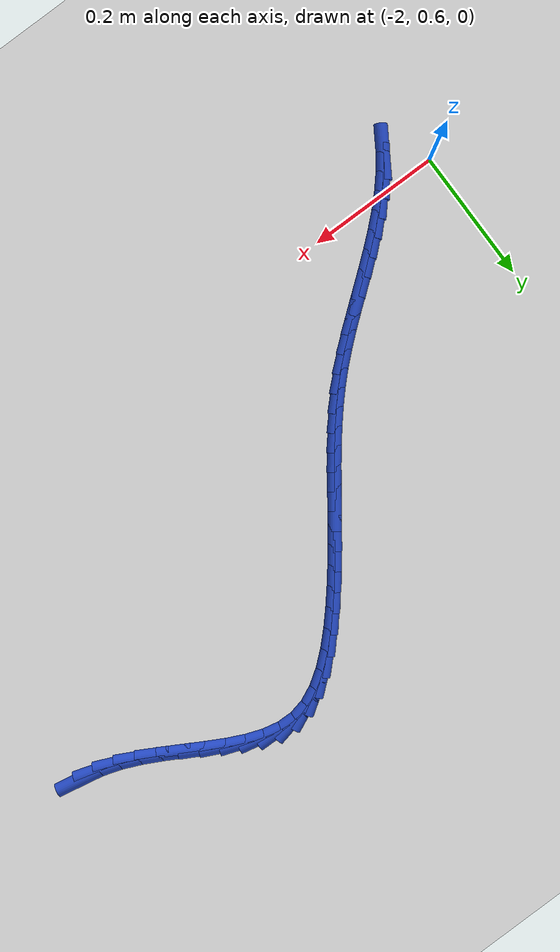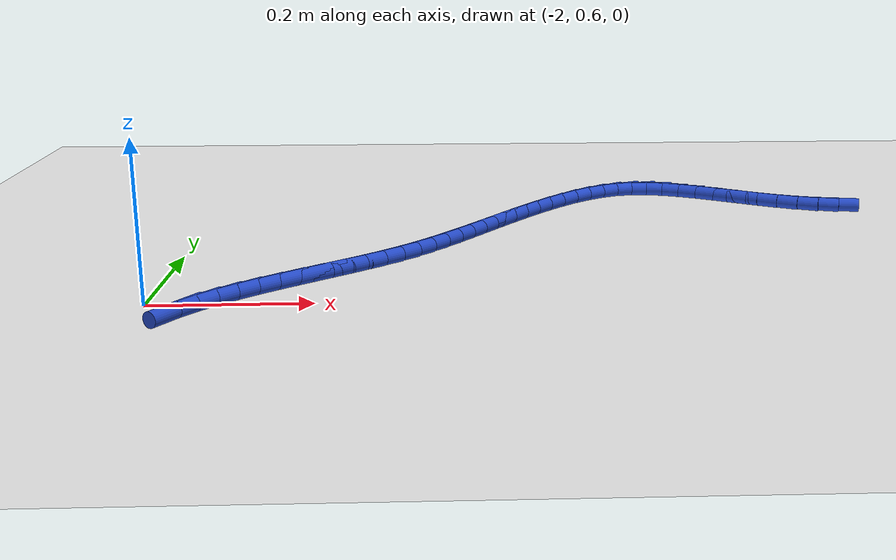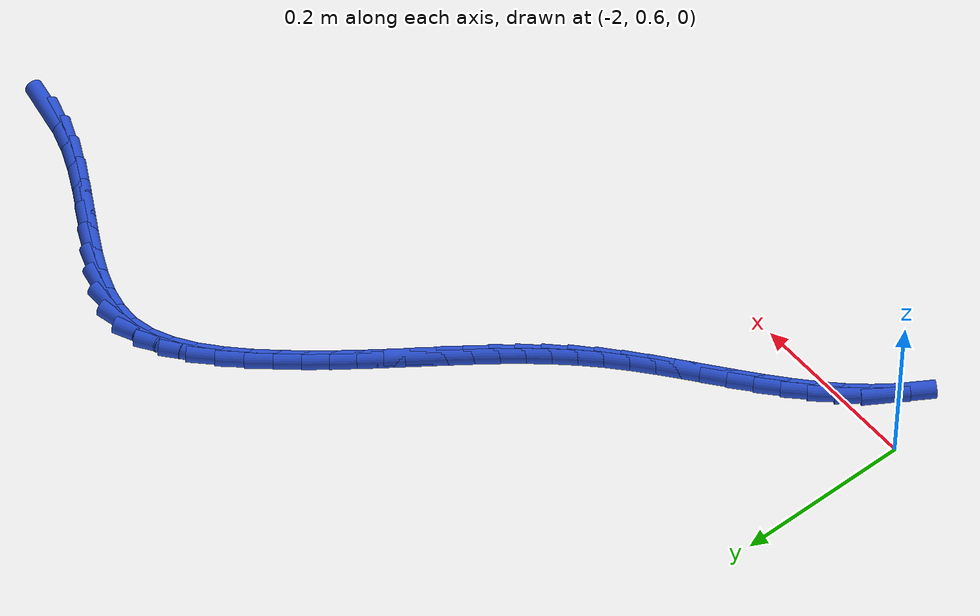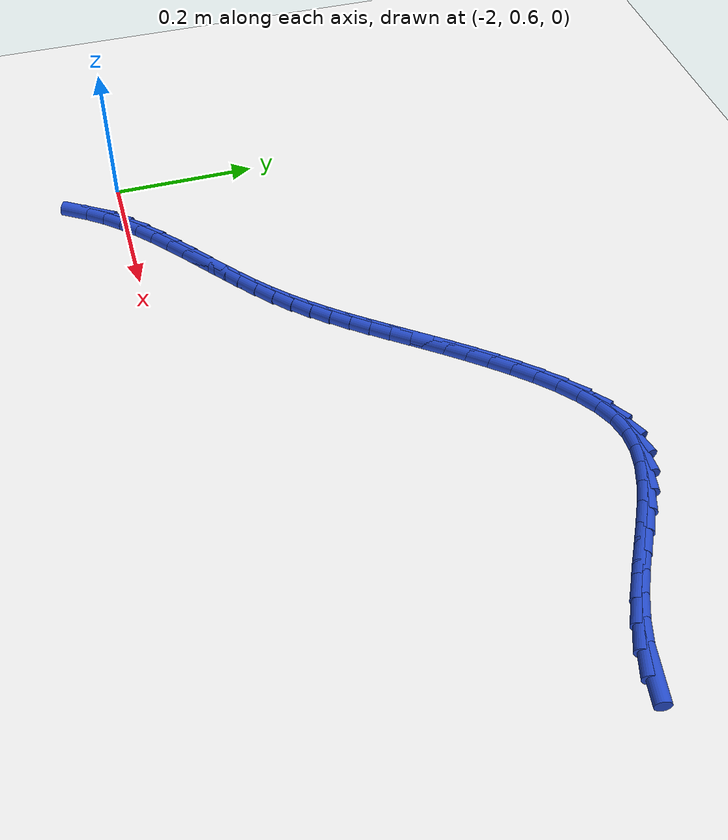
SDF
<sdf version="1.6">
 <world name="default">
  <model name="ground_plane">
   <static>1</static>
   <link name="link">
    <collision name="collision">
     <geometry><plane><normal>0 0 1</normal><size>100 100</size></plane></geometry>
     <surface><friction><ode><mu>100</mu><mu2>50</mu2></ode></friction></surface>
    </collision>
    <visual name="visual">
     <cast_shadows>0</cast_shadows>
     <geometry><plane><normal>0 0 1</normal><size>100 100</size></plane></geometry>
     <material>
      <script><uri>file://media/materials/scripts/gazebo.material</uri><name>Gazebo/WhiteGlow</name></script>
     </material>
    </visual>
   </link>
  </model>
  <model name="line">
   <link name="link_57">
    <pose>-1.0777217798483143 1.0114963046796694 0.01 0 1.57 -0.18963756729086753</pose>
    <collision name="collision">
     <geometry><cylinder><radius>0.01</radius><length>0.08</length></cylinder></geometry>
    </collision>
    <visual name="visual">
     <material>
      <script><name>Gazebo/Blue</name><uri>file://media/materials/scripts/gazebo.material</uri></script>
     </material>
     <geometry><cylinder><radius>0.01</radius><length>0.08</length></cylinder></geometry>
    </visual>
   </link>
   <link name="link_58">
    <pose>-1.1061376690431433 1.0169505648471462 0.01 0 1.57 -0.31014908968528165</pose>
    <collision name="collision">
     <geometry><cylinder><radius>0.01</radius><length>0.08</length></cylinder></geometry>
    </collision>
    <visual name="visual">
     <material>
      <script><name>Gazebo/Blue</name><uri>file://media/materials/scripts/gazebo.material</uri></script>
     </material>
     <geometry><cylinder><radius>0.01</radius><length>0.08</length></cylinder></geometry>
    </visual>
   </link>
   <link name="link_59">
    <pose>-1.1342468490902466 1.025959329386577 0.01 0 1.57 -0.408121723956436</pose>
    <collision name="collision">
     <geometry><cylinder><radius>0.01</radius><length>0.08</length></cylinder></geometry>
    </collision>
    <visual name="visual">
     <material>
      <script><name>Gazebo/Blue</name><uri>file://media/materials/scripts/gazebo.material</uri></script>
     </material>
     <geometry><cylinder><radius>0.01</radius><length>0.08</length></cylinder></geometry>
    </visual>
   </link>
   <link name="link_60">
    <pose>-1.1620193161146386 1.03796814226873 0.01 0 1.57 -0.4725298005467078</pose>
    <collision name="collision">
     <geometry><cylinder><radius>0.01</radius><length>0.08</length></cylinder></geometry>
    </collision>
    <visual name="visual">
     <material>
      <script><name>Gazebo/Blue</name><uri>file://media/materials/scripts/gazebo.material</uri></script>
     </material>
     <geometry><cylinder><radius>0.01</radius><length>0.08</length></cylinder></geometry>
    </visual>
   </link>
   <link name="link_61">
    <pose>-1.1894486435583793 1.0519887132742813 0.01 0 1.57 -0.5070642484486582</pose>
    <collision name="collision">
     <geometry><cylinder><radius>0.01</radius><length>0.08</length></cylinder></geometry>
    </collision>
    <visual name="visual">
     <material>
      <script><name>Gazebo/Blue</name><uri>file://media/materials/scripts/gazebo.material</uri></script>
     </material>
     <geometry><cylinder><radius>0.01</radius><length>0.08</length></cylinder></geometry>
    </visual>
   </link>
   <link name="link_62">
    <pose>-1.2165284545049395 1.067031838757636 0.01 0 1.57 -0.5136470484361008</pose>
    <collision name="collision">
     <geometry><cylinder><radius>0.01</radius><length>0.08</length></cylinder></geometry>
    </collision>
    <visual name="visual">
     <material>
      <script><name>Gazebo/Blue</name><uri>file://media/materials/scripts/gazebo.material</uri></script>
     </material>
     <geometry><cylinder><radius>0.01</radius><length>0.08</length></cylinder></geometry>
    </visual>
   </link>
   <link name="link_63">
    <pose>-1.243252372037789 1.0821083150731985 0.01 0 1.57 -0.49175943579107173</pose>
    <collision name="collision">
     <geometry><cylinder><radius>0.01</radius><length>0.08</length></cylinder></geometry>
    </collision>
    <visual name="visual">
     <material>
      <script><name>Gazebo/Blue</name><uri>file://media/materials/scripts/gazebo.material</uri></script>
     </material>
     <geometry><cylinder><radius>0.01</radius><length>0.08</length></cylinder></geometry>
    </visual>
   </link>
   <link name="link_64">
    <pose>-1.2696140192403986 1.096228938575373 0.01 0 1.57 -0.43806363856981906</pose>
    <collision name="collision">
     <geometry><cylinder><radius>0.01</radius><length>0.08</length></cylinder></geometry>
    </collision>
    <visual name="visual">
     <material>
      <script><name>Gazebo/Blue</name><uri>file://media/materials/scripts/gazebo.material</uri></script>
     </material>
     <geometry><cylinder><radius>0.01</radius><length>0.08</length></cylinder></geometry>
    </visual>
   </link>
   <link name="link_65">
    <pose>-1.2956070191962377 1.108404505618564 0.01 0 1.57 -0.34620632339271007</pose>
    <collision name="collision">
     <geometry><cylinder><radius>0.01</radius><length>0.08</length></cylinder></geometry>
    </collision>
    <visual name="visual">
     <material>
      <script><name>Gazebo/Blue</name><uri>file://media/materials/scripts/gazebo.material</uri></script>
     </material>
     <geometry><cylinder><radius>0.01</radius><length>0.08</length></cylinder></geometry>
    </visual>
   </link>
   <link name="link_66">
    <pose>-1.3212249949887778 1.1176458125571762 0.01 0 1.57 -0.20768138611917372</pose>
    <collision name="collision">
     <geometry><cylinder><radius>0.01</radius><length>0.08</length></cylinder></geometry>
    </collision>
    <visual name="visual">
     <material>
      <script><name>Gazebo/Blue</name><uri>file://media/materials/scripts/gazebo.material</uri></script>
     </material>
     <geometry><cylinder><radius>0.01</radius><length>0.08</length></cylinder></geometry>
    </visual>
   </link>
   <link name="link_67">
    <pose>-1.3464615697014881 1.1229636557456144 0.01 0 1.57 -0.016304205568538666</pose>
    <collision name="collision">
     <geometry><cylinder><radius>0.01</radius><length>0.08</length></cylinder></geometry>
    </collision>
    <visual name="visual">
     <material>
      <script><name>Gazebo/Blue</name><uri>file://media/materials/scripts/gazebo.material</uri></script>
     </material>
     <geometry><cylinder><radius>0.01</radius><length>0.08</length></cylinder></geometry>
    </visual>
   </link>
   <link name="link_68">
    <pose>-1.3713103664178399 1.1233688315382828 0.01 0 1.57 0.21829590260100543</pose>
    <collision name="collision">
     <geometry><cylinder><radius>0.01</radius><length>0.08</length></cylinder></geometry>
    </collision>
    <visual name="visual">
     <material>
      <script><name>Gazebo/Blue</name><uri>file://media/materials/scripts/gazebo.material</uri></script>
     </material>
     <geometry><cylinder><radius>0.01</radius><length>0.08</length></cylinder></geometry>
    </visual>
   </link>
   <link name="link_69">
    <pose>-1.3957604164779591 1.1179450576303693 0.01 0 1.57 0.43227511256635154</pose>
    <collision name="collision">
     <geometry><cylinder><radius>0.01</radius><length>0.08</length></cylinder></geometry>
    </collision>
    <visual name="visual">
     <material>
      <script><name>Gazebo/Blue</name><uri>file://media/materials/scripts/gazebo.material</uri></script>
     </material>
     <geometry><cylinder><radius>0.01</radius><length>0.08</length></cylinder></geometry>
    </visual>
   </link>
   <link name="link_70">
    <pose>-1.4197308832820836 1.1068856224124266 0.01 0 1.57 0.5900061105820735</pose>
    <collision name="collision">
     <geometry><cylinder><radius>0.01</radius><length>0.08</length></cylinder></geometry>
    </collision>
    <visual name="visual">
     <material>
      <script><name>Gazebo/Blue</name><uri>file://media/materials/scripts/gazebo.material</uri></script>
     </material>
     <geometry><cylinder><radius>0.01</radius><length>0.08</length></cylinder></geometry>
    </visual>
   </link>
   <link name="link_71">
    <pose>-1.4430865452606743 1.0912475003780706 0.01 0 1.57 0.7025256998970416</pose>
    <collision name="collision">
     <geometry><cylinder><radius>0.01</radius><length>0.08</length></cylinder></geometry>
    </collision>
    <visual name="visual">
     <material>
      <script><name>Gazebo/Blue</name><uri>file://media/materials/scripts/gazebo.material</uri></script>
     </material>
     <geometry><cylinder><radius>0.01</radius><length>0.08</length></cylinder></geometry>
    </visual>
   </link>
   <link name="link_72">
    <pose>-1.465690746744254 1.0721104409197761 0.01 0 1.57 0.7817044151747691</pose>
    <collision name="collision">
     <geometry><cylinder><radius>0.01</radius><length>0.08</length></cylinder></geometry>
    </collision>
    <visual name="visual">
     <material>
      <script><name>Gazebo/Blue</name><uri>file://media/materials/scripts/gazebo.material</uri></script>
     </material>
     <geometry><cylinder><radius>0.01</radius><length>0.08</length></cylinder></geometry>
    </visual>
   </link>
   <link name="link_73">
    <pose>-1.4874068320633462 1.0505541934300189 0.01 0 1.57 0.8359291964906289</pose>
    <collision name="collision">
     <geometry><cylinder><radius>0.01</radius><length>0.08</length></cylinder></geometry>
    </collision>
    <visual name="visual">
     <material>
      <script><name>Gazebo/Blue</name><uri>file://media/materials/scripts/gazebo.material</uri></script>
     </material>
     <geometry><cylinder><radius>0.01</radius><length>0.08</length></cylinder></geometry>
    </visual>
   </link>
   <link name="link_74">
    <pose>-1.5080981455484754 1.027658507301274 0.01 0 1.57 0.8713934667841656</pose>
    <collision name="collision">
     <geometry><cylinder><radius>0.01</radius><length>0.08</length></cylinder></geometry>
    </collision>
    <visual name="visual">
     <material>
      <script><name>Gazebo/Blue</name><uri>file://media/materials/scripts/gazebo.material</uri></script>
     </material>
     <geometry><cylinder><radius>0.01</radius><length>0.08</length></cylinder></geometry>
    </visual>
   </link>
   <link name="link_75">
    <pose>-1.5276616913364012 1.0044036786773858 0.01 0 1.57 0.8979734134597531</pose>
    <collision name="collision">
     <geometry><cylinder><radius>0.01</radius><length>0.08</length></cylinder></geometry>
    </collision>
    <visual name="visual">
     <material>
      <script><name>Gazebo/Blue</name><uri>file://media/materials/scripts/gazebo.material</uri></script>
     </material>
     <geometry><cylinder><radius>0.01</radius><length>0.08</length></cylinder></geometry>
    </visual>
   </link>
   <link name="link_76">
    <pose>-1.5462136987787907 0.9811222679531879 0.01 0 1.57 0.9185829386525458</pose>
    <collision name="collision">
     <geometry><cylinder><radius>0.01</radius><length>0.08</length></cylinder></geometry>
    </collision>
    <visual name="visual">
     <material>
      <script><name>Gazebo/Blue</name><uri>file://media/materials/scripts/gazebo.material</uri></script>
     </material>
     <geometry><cylinder><radius>0.01</radius><length>0.08</length></cylinder></geometry>
    </visual>
   </link>
   <link name="link_77">
    <pose>-1.56395817879367 0.9578874709305374 0.01 0 1.57 0.9327317019199689</pose>
    <collision name="collision">
     <geometry><cylinder><radius>0.01</radius><length>0.08</length></cylinder></geometry>
    </collision>
    <visual name="visual">
     <material>
      <script><name>Gazebo/Blue</name><uri>file://media/materials/scripts/gazebo.material</uri></script>
     </material>
     <geometry><cylinder><radius>0.01</radius><length>0.08</length></cylinder></geometry>
    </visual>
   </link>
   <link name="link_78">
    <pose>-1.581099375588295 0.9347717941211714 0.01 0 1.57 0.9400022929701474</pose>
    <collision name="collision">
     <geometry><cylinder><radius>0.01</radius><length>0.08</length></cylinder></geometry>
    </collision>
    <visual name="visual">
     <material>
      <script><name>Gazebo/Blue</name><uri>file://media/materials/scripts/gazebo.material</uri></script>
     </material>
     <geometry><cylinder><radius>0.01</radius><length>0.08</length></cylinder></geometry>
    </visual>
   </link>
   <link name="link_79">
    <pose>-1.5978415333699214 0.9118477440368282 0.01 0 1.57 0.9400566881935359</pose>
    <collision name="collision">
     <geometry><cylinder><radius>0.01</radius><length>0.08</length></cylinder></geometry>
    </collision>
    <visual name="visual">
     <material>
      <script><name>Gazebo/Blue</name><uri>file://media/materials/scripts/gazebo.material</uri></script>
     </material>
     <geometry><cylinder><radius>0.01</radius><length>0.08</length></cylinder></geometry>
    </visual>
   </link>
   <link name="link_80">
    <pose>-1.614388896345806 0.8891878271892448 0.01 0 1.57 0.9326388836136437</pose>
    <collision name="collision">
     <geometry><cylinder><radius>0.01</radius><length>0.08</length></cylinder></geometry>
    </collision>
    <visual name="visual">
     <material>
      <script><name>Gazebo/Blue</name><uri>file://media/materials/scripts/gazebo.material</uri></script>
     </material>
     <geometry><cylinder><radius>0.01</radius><length>0.08</length></cylinder></geometry>
    </visual>
   </link>
   <link name="link_81">
    <pose>-1.630945708723205 0.8668645500901585 0.01 0 1.57 0.9175858003845201</pose>
    <collision name="collision">
     <geometry><cylinder><radius>0.01</radius><length>0.08</length></cylinder></geometry>
    </collision>
    <visual name="visual">
     <material>
      <script><name>Gazebo/Blue</name><uri>file://media/materials/scripts/gazebo.material</uri></script>
     </material>
     <geometry><cylinder><radius>0.01</radius><length>0.08</length></cylinder></geometry>
    </visual>
   </link>
   <link name="link_82">
    <pose>-1.6477162147093745 0.8449504192513075 0.01 0 1.57 0.8948485219744452</pose>
    <collision name="collision">
     <geometry><cylinder><radius>0.01</radius><length>0.08</length></cylinder></geometry>
    </collision>
    <visual name="visual">
     <material>
      <script><name>Gazebo/Blue</name><uri>file://media/materials/scripts/gazebo.material</uri></script>
     </material>
     <geometry><cylinder><radius>0.01</radius><length>0.08</length></cylinder></geometry>
    </visual>
   </link>
   <link name="link_83">
    <pose>-1.6649046585115697 0.8235179411844286 0.01 0 1.57 0.8645238199147148</pose>
    <collision name="collision">
     <geometry><cylinder><radius>0.01</radius><length>0.08</length></cylinder></geometry>
    </collision>
    <visual name="visual">
     <material>
      <script><name>Gazebo/Blue</name><uri>file://media/materials/scripts/gazebo.material</uri></script>
     </material>
     <geometry><cylinder><radius>0.01</radius><length>0.08</length></cylinder></geometry>
    </visual>
   </link>
   <link name="link_84">
    <pose>-1.6827152843370485 0.8026396224012599 0.01 0 1.57 0.8268928376455659</pose>
    <collision name="collision">
     <geometry><cylinder><radius>0.01</radius><length>0.08</length></cylinder></geometry>
    </collision>
    <visual name="visual">
     <material>
      <script><name>Gazebo/Blue</name><uri>file://media/materials/scripts/gazebo.material</uri></script>
     </material>
     <geometry><cylinder><radius>0.01</radius><length>0.08</length></cylinder></geometry>
    </visual>
   </link>
   <link name="link_85">
    <pose>-1.7013523363930658 0.7823879694135378 0.01 0 1.57 0.7824617821054257</pose>
    <collision name="collision">
     <geometry><cylinder><radius>0.01</radius><length>0.08</length></cylinder></geometry>
    </collision>
    <visual name="visual">
     <material>
      <script><name>Gazebo/Blue</name><uri>file://media/materials/scripts/gazebo.material</uri></script>
     </material>
     <geometry><cylinder><radius>0.01</radius><length>0.08</length></cylinder></geometry>
    </visual>
   </link>
   <link name="link_86">
    <pose>-1.7210200095322352 0.7628354620097838 0.01 0 1.57 0.7360190742335548</pose>
    <collision name="collision">
     <geometry><cylinder><radius>0.01</radius><length>0.08</length></cylinder></geometry>
    </collision>
    <visual name="visual">
     <material>
      <script><name>Gazebo/Blue</name><uri>file://media/materials/scripts/gazebo.material</uri></script>
     </material>
     <geometry><cylinder><radius>0.01</radius><length>0.08</length></cylinder></geometry>
    </visual>
   </link>
   <link name="link_87">
    <pose>-1.7418168329581214 0.7439973669997312 0.01 0 1.57 0.7003424267690751</pose>
    <collision name="collision">
     <geometry><cylinder><radius>0.01</radius><length>0.08</length></cylinder></geometry>
    </collision>
    <visual name="visual">
     <material>
      <script><name>Gazebo/Blue</name><uri>file://media/materials/scripts/gazebo.material</uri></script>
     </material>
     <geometry><cylinder><radius>0.01</radius><length>0.08</length></cylinder></geometry>
    </visual>
   </link>
   <link name="link_88">
    <pose>-1.7635123217473943 0.7257108055191752 0.01 0 1.57 0.6772686198572222</pose>
    <collision name="collision">
     <geometry><cylinder><radius>0.01</radius><length>0.08</length></cylinder></geometry>
    </collision>
    <visual name="visual">
     <material>
      <script><name>Gazebo/Blue</name><uri>file://media/materials/scripts/gazebo.material</uri></script>
     </material>
     <geometry><cylinder><radius>0.01</radius><length>0.08</length></cylinder></geometry>
    </visual>
   </link>
   <link name="link_89">
    <pose>-1.785812136681418 0.7077783246065036 0.01 0 1.57 0.6662702222797875</pose>
    <collision name="collision">
     <geometry><cylinder><radius>0.01</radius><length>0.08</length></cylinder></geometry>
    </collision>
    <visual name="visual">
     <material>
      <script><name>Gazebo/Blue</name><uri>file://media/materials/scripts/gazebo.material</uri></script>
     </material>
     <geometry><cylinder><radius>0.01</radius><length>0.08</length></cylinder></geometry>
    </visual>
   </link>
   <link name="link_90">
    <pose>-1.8084219385415554 0.6900024713001058 0.01 0 1.57 0.6670488412044291</pose>
    <collision name="collision">
     <geometry><cylinder><radius>0.01</radius><length>0.08</length></cylinder></geometry>
    </collision>
    <visual name="visual">
     <material>
      <script><name>Gazebo/Blue</name><uri>file://media/materials/scripts/gazebo.material</uri></script>
     </material>
     <geometry><cylinder><radius>0.01</radius><length>0.08</length></cylinder></geometry>
    </visual>
   </link>
   <link name="link_91">
    <pose>-1.831047388109172 0.6721857926383701 0.01 0 1.57 0.6795668640211441</pose>
    <collision name="collision">
     <geometry><cylinder><radius>0.01</radius><length>0.08</length></cylinder></geometry>
    </collision>
    <visual name="visual">
     <material>
      <script><name>Gazebo/Blue</name><uri>file://media/materials/scripts/gazebo.material</uri></script>
     </material>
     <geometry><cylinder><radius>0.01</radius><length>0.08</length></cylinder></geometry>
    </visual>
   </link>
   <link name="link_92">
    <pose>-1.8533941461656307 0.6541308356596848 0.01 0 1.57 0.7040411540971292</pose>
    <collision name="collision">
     <geometry><cylinder><radius>0.01</radius><length>0.08</length></cylinder></geometry>
    </collision>
    <visual name="visual">
     <material>
      <script><name>Gazebo/Blue</name><uri>file://media/materials/scripts/gazebo.material</uri></script>
     </material>
     <geometry><cylinder><radius>0.01</radius><length>0.08</length></cylinder></geometry>
    </visual>
   </link>
   <link name="link_93">
    <pose>-1.8751678734922967 0.6356401474024385 0.01 0 1.57 0.7408990887886197</pose>
    <collision name="collision">
     <geometry><cylinder><radius>0.01</radius><length>0.08</length></cylinder></geometry>
    </collision>
    <visual name="visual">
     <material>
      <script><name>Gazebo/Blue</name><uri>file://media/materials/scripts/gazebo.material</uri></script>
     </material>
     <geometry><cylinder><radius>0.01</radius><length>0.08</length></cylinder></geometry>
    </visual>
   </link>
   <link name="link_94">
    <pose>-1.8960742308705334 0.61651627490502 0.01 0 1.57 0.7906844098635166</pose>
    <collision name="collision">
     <geometry><cylinder><radius>0.01</radius><length>0.08</length></cylinder></geometry>
    </collision>
    <visual name="visual">
     <material>
      <script><name>Gazebo/Blue</name><uri>file://media/materials/scripts/gazebo.material</uri></script>
     </material>
     <geometry><cylinder><radius>0.01</radius><length>0.08</length></cylinder></geometry>
    </visual>
   </link>
   <link name="link_95">
    <pose>-1.9158188790817046 0.5965617652058177 0.01 0 1.57 0.8538907485994083</pose>
    <collision name="collision">
     <geometry><cylinder><radius>0.01</radius><length>0.08</length></cylinder></geometry>
    </collision>
    <visual name="visual">
     <material>
      <script><name>Gazebo/Blue</name><uri>file://media/materials/scripts/gazebo.material</uri></script>
     </material>
     <geometry><cylinder><radius>0.01</radius><length>0.08</length></cylinder></geometry>
    </visual>
   </link>
   <link name="link_96">
    <pose>-1.9341074789071744 0.57557916534322 0.01 0 1.57 0.9305658368261726</pose>
    <collision name="collision">
     <geometry><cylinder><radius>0.01</radius><length>0.08</length></cylinder></geometry>
    </collision>
    <visual name="visual">
     <material>
      <script><name>Gazebo/Blue</name><uri>file://media/materials/scripts/gazebo.material</uri></script>
     </material>
     <geometry><cylinder><radius>0.01</radius><length>0.08</length></cylinder></geometry>
    </visual>
   </link>
   <link name="link_97">
    <pose>-1.9506488189032045 0.5533731076586375 0.01 0 1.57 1.0112972164891676</pose>
    <collision name="collision">
     <geometry><cylinder><radius>0.01</radius><length>0.08</length></cylinder></geometry>
    </collision>
    <visual name="visual">
     <material>
      <script><name>Gazebo/Blue</name><uri>file://media/materials/scripts/gazebo.material</uri></script>
     </material>
     <geometry><cylinder><radius>0.01</radius><length>0.08</length></cylinder></geometry>
    </visual>
   </link>
  </model>
 </world>
</sdf>
